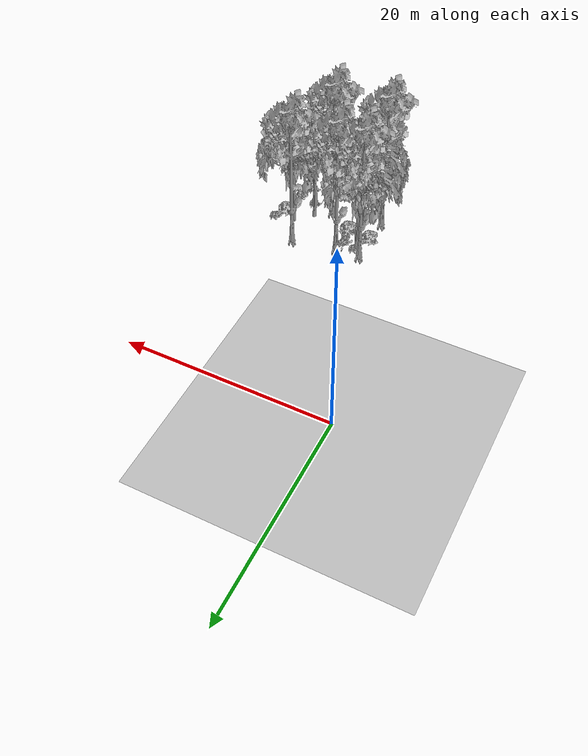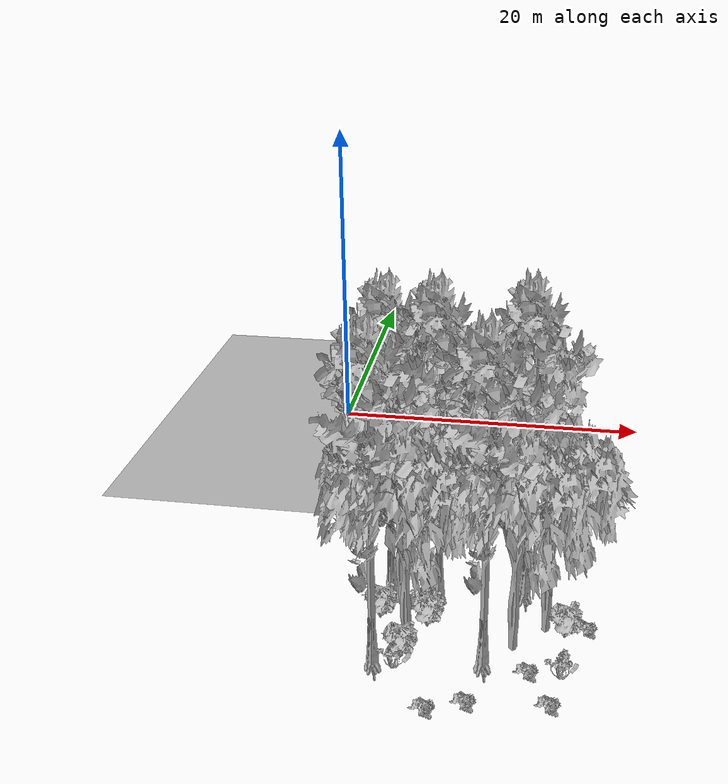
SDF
<sdf version="1.7">
 <world name="default">
  <model name="ground_plane">
   <static>1</static>
   <link name="link">
    <collision name="collision">
     <pose>-50 0 0 0 -0 0</pose>
     <geometry><plane><normal>0 0 1</normal><size>80 80</size></plane></geometry>
     <surface><contact><ode><min_depth>0.01</min_depth><max_vel>0</max_vel></ode></contact></surface>
    </collision>
    <visual name="grass">
     <cast_shadows>0</cast_shadows>
     <geometry>
      <mesh>
       <scale>0.46714285714285714 0.46714285714285714 0.1</scale>
       <uri>file://grass_plane/meshes/grass_plane.dae</uri>
      </mesh>
     </geometry>
    </visual>
   </link>
  </model>
  <model name="Tree 68">
   <static>1</static>
   <pose>11.339195001185281 -23.77236714566612 0 1.57079 -0 0</pose>
   <link name="link">
    <collision name="collision">
     <geometry><mesh><scale>3.5 5 3.5</scale><uri>model://tree_9/meshes/tree_9.obj</uri></mesh></geometry>
    </collision>
    <visual name="visual">
     <geometry><mesh><scale>3.5 5 3.5</scale><uri>model://tree_9/meshes/tree_9.obj</uri></mesh></geometry>
    </visual>
   </link>
  </model>
  <model name="Tree 129">
   <static>1</static>
   <pose>14.125215830352772 -21.000526597119897 0 1.57079 -0 0</pose>
   <link name="link">
    <collision name="collision">
     <geometry><mesh><scale>3.5 5 3.5</scale><uri>model://tree_2/meshes/tree_2.obj</uri></mesh></geometry>
    </collision>
    <visual name="visual">
     <geometry><mesh><scale>3.5 5 3.5</scale><uri>model://tree_2/meshes/tree_2.obj</uri></mesh></geometry>
    </visual>
   </link>
  </model>
  <model name="Tree 200">
   <static>1</static>
   <pose>6.86100172742146 -20.00597521660076 0 1.57079 -0 0</pose>
   <link name="link">
    <collision name="collision">
     <geometry><mesh><scale>3.5 5 3.5</scale><uri>model://tree_2/meshes/tree_2.obj</uri></mesh></geometry>
    </collision>
    <visual name="visual">
     <geometry><mesh><scale>3.5 5 3.5</scale><uri>model://tree_2/meshes/tree_2.obj</uri></mesh></geometry>
    </visual>
   </link>
  </model>
  <model name="Tree 432">
   <static>1</static>
   <pose>6.274757917883562 -19.15958313362884 0 1.57079 -0 0</pose>
   <link name="link">
    <collision name="collision">
     <geometry><mesh><scale>3.5 5 3.5</scale><uri>model://tree_9/meshes/tree_9.obj</uri></mesh></geometry>
    </collision>
    <visual name="visual">
     <geometry><mesh><scale>3.5 5 3.5</scale><uri>model://tree_9/meshes/tree_9.obj</uri></mesh></geometry>
    </visual>
   </link>
  </model>
  <model name="Tree 435">
   <static>1</static>
   <pose>12.599509060064022 -22.526927243239598 0 1.57079 -0 0</pose>
   <link name="link">
    <collision name="collision">
     <geometry><mesh><scale>3.5 5 3.5</scale><uri>model://tree_2/meshes/tree_2.obj</uri></mesh></geometry>
    </collision>
    <visual name="visual">
     <geometry><mesh><scale>3.5 5 3.5</scale><uri>model://tree_2/meshes/tree_2.obj</uri></mesh></geometry>
    </visual>
   </link>
  </model>
  <model name="Tree 517">
   <static>1</static>
   <pose>7.554066066907367 -23.095106547403503 0 1.57079 -0 0</pose>
   <link name="link">
    <collision name="collision">
     <geometry><mesh><scale>3.5 5 3.5</scale><uri>model://tree_2/meshes/tree_2.obj</uri></mesh></geometry>
    </collision>
    <visual name="visual">
     <geometry><mesh><scale>3.5 5 3.5</scale><uri>model://tree_2/meshes/tree_2.obj</uri></mesh></geometry>
    </visual>
   </link>
  </model>
  <model name="Tree 518">
   <static>1</static>
   <pose>8.715440965858754 -19.04327010101686 0 1.57079 -0 0</pose>
   <link name="link">
    <collision name="collision">
     <geometry><mesh><scale>3.5 5 3.5</scale><uri>model://tree_9/meshes/tree_9.obj</uri></mesh></geometry>
    </collision>
    <visual name="visual">
     <geometry><mesh><scale>3.5 5 3.5</scale><uri>model://tree_9/meshes/tree_9.obj</uri></mesh></geometry>
    </visual>
   </link>
  </model>
  <model name="Tree 533">
   <static>1</static>
   <pose>13.098867965914017 -18.38598945712195 0 1.57079 -0 0</pose>
   <link name="link">
    <collision name="collision">
     <geometry><mesh><scale>3.5 5 3.5</scale><uri>model://tree_9/meshes/tree_9.obj</uri></mesh></geometry>
    </collision>
    <visual name="visual">
     <geometry><mesh><scale>3.5 5 3.5</scale><uri>model://tree_9/meshes/tree_9.obj</uri></mesh></geometry>
    </visual>
   </link>
  </model>
  <model name="Tree 585">
   <static>1</static>
   <pose>6.2201643578020125 -24.371769215752686 0 1.57079 -0 0</pose>
   <link name="link">
    <collision name="collision">
     <geometry><mesh><scale>3.5 5 3.5</scale><uri>model://tree_9/meshes/tree_9.obj</uri></mesh></geometry>
    </collision>
    <visual name="visual">
     <geometry><mesh><scale>3.5 5 3.5</scale><uri>model://tree_9/meshes/tree_9.obj</uri></mesh></geometry>
    </visual>
   </link>
  </model>
  <model name="Bush 76">
   <static>1</static>
   <pose>7.072009461599656 -19.903549897004716 0 1.57079 -0 0</pose>
   <link name="link">
    <collision name="collision">
     <geometry><mesh><scale>2 2 2</scale><uri>model://bush_2/meshes/bush_2.obj</uri></mesh></geometry>
     <surface><contact><collide_without_contact>false</collide_without_contact></contact></surface>
    </collision>
    <visual name="visual">
     <geometry><mesh><scale>2 2 2</scale><uri>model://bush_2/meshes/bush_2.obj</uri></mesh></geometry>
    </visual>
   </link>
  </model>
  <model name="Bush 129">
   <static>1</static>
   <pose>8.0674106808629 -19.04170683065899 0 1.57079 -0 0</pose>
   <link name="link">
    <collision name="collision">
     <geometry><mesh><scale>2 2 2</scale><uri>model://bush_5/meshes/bush_5.obj</uri></mesh></geometry>
     <surface><contact><collide_without_contact>false</collide_without_contact></contact></surface>
    </collision>
    <visual name="visual">
     <geometry><mesh><scale>2 2 2</scale><uri>model://bush_5/meshes/bush_5.obj</uri></mesh></geometry>
    </visual>
   </link>
  </model>
  <model name="Bush 140">
   <static>1</static>
   <pose>8.14055713601909 -20.109406971659496 0 1.57079 -0 0</pose>
   <link name="link">
    <collision name="collision">
     <geometry><mesh><scale>2 2 2</scale><uri>model://bush_4/meshes/bush_4.obj</uri></mesh></geometry>
     <surface><contact><collide_without_contact>false</collide_without_contact></contact></surface>
    </collision>
    <visual name="visual">
     <geometry><mesh><scale>2 2 2</scale><uri>model://bush_4/meshes/bush_4.obj</uri></mesh></geometry>
    </visual>
   </link>
  </model>
  <model name="Bush 161">
   <static>1</static>
   <pose>15.14729992277045 -21.43636772066925 0 1.57079 -0 0</pose>
   <link name="link">
    <collision name="collision">
     <geometry><mesh><scale>2 2 2</scale><uri>model://bush_1/meshes/bush_1.obj</uri></mesh></geometry>
     <surface><contact><collide_without_contact>false</collide_without_contact></contact></surface>
    </collision>
    <visual name="visual">
     <geometry><mesh><scale>2 2 2</scale><uri>model://bush_1/meshes/bush_1.obj</uri></mesh></geometry>
    </visual>
   </link>
  </model>
  <model name="Bush 169">
   <static>1</static>
   <pose>6.031274650350596 -21.221891697357602 0 1.57079 -0 0</pose>
   <link name="link">
    <collision name="collision">
     <geometry><mesh><scale>2 2 2</scale><uri>model://bush_1/meshes/bush_1.obj</uri></mesh></geometry>
     <surface><contact><collide_without_contact>false</collide_without_contact></contact></surface>
    </collision>
    <visual name="visual">
     <geometry><mesh><scale>2 2 2</scale><uri>model://bush_1/meshes/bush_1.obj</uri></mesh></geometry>
    </visual>
   </link>
  </model>
  <model name="Bush 219">
   <static>1</static>
   <pose>10.704777529103637 -26.429839361374434 0 1.57079 -0 0</pose>
   <link name="link">
    <collision name="collision">
     <geometry><mesh><scale>2 2 2</scale><uri>model://bush_2/meshes/bush_2.obj</uri></mesh></geometry>
     <surface><contact><collide_without_contact>false</collide_without_contact></contact></surface>
    </collision>
    <visual name="visual">
     <geometry><mesh><scale>2 2 2</scale><uri>model://bush_2/meshes/bush_2.obj</uri></mesh></geometry>
    </visual>
   </link>
  </model>
  <model name="Bush 312">
   <static>1</static>
   <pose>7.2346977460605615 -24.626808684807095 0 1.57079 -0 0</pose>
   <link name="link">
    <collision name="collision">
     <geometry><mesh><scale>2 2 2</scale><uri>model://bush_4/meshes/bush_4.obj</uri></mesh></geometry>
     <surface><contact><collide_without_contact>false</collide_without_contact></contact></surface>
    </collision>
    <visual name="visual">
     <geometry><mesh><scale>2 2 2</scale><uri>model://bush_4/meshes/bush_4.obj</uri></mesh></geometry>
    </visual>
   </link>
  </model>
  <model name="Bush 367">
   <static>1</static>
   <pose>14.431050979920634 -26.117790221529944 0 1.57079 -0 0</pose>
   <link name="link">
    <collision name="collision">
     <geometry><mesh><scale>2 2 2</scale><uri>model://bush_2/meshes/bush_2.obj</uri></mesh></geometry>
     <surface><contact><collide_without_contact>false</collide_without_contact></contact></surface>
    </collision>
    <visual name="visual">
     <geometry><mesh><scale>2 2 2</scale><uri>model://bush_2/meshes/bush_2.obj</uri></mesh></geometry>
    </visual>
   </link>
  </model>
  <model name="Bush 439">
   <static>1</static>
   <pose>16.19251668974718 -20.808854797362997 0 1.57079 -0 0</pose>
   <link name="link">
    <collision name="collision">
     <geometry><mesh><scale>2 2 2</scale><uri>model://bush_2/meshes/bush_2.obj</uri></mesh></geometry>
     <surface><contact><collide_without_contact>false</collide_without_contact></contact></surface>
    </collision>
    <visual name="visual">
     <geometry><mesh><scale>2 2 2</scale><uri>model://bush_2/meshes/bush_2.obj</uri></mesh></geometry>
    </visual>
   </link>
  </model>
  <model name="Bush 443">
   <static>1</static>
   <pose>8.940242842079037 -27.03844901509501 0 1.57079 -0 0</pose>
   <link name="link">
    <collision name="collision">
     <geometry><mesh><scale>2 2 2</scale><uri>model://bush_2/meshes/bush_2.obj</uri></mesh></geometry>
     <surface><contact><collide_without_contact>false</collide_without_contact></contact></surface>
    </collision>
    <visual name="visual">
     <geometry><mesh><scale>2 2 2</scale><uri>model://bush_2/meshes/bush_2.obj</uri></mesh></geometry>
    </visual>
   </link>
  </model>
  <model name="Bush 476">
   <static>1</static>
   <pose>13.403439470723363 -24.163704501230203 0 1.57079 -0 0</pose>
   <link name="link">
    <collision name="collision">
     <geometry><mesh><scale>2 2 2</scale><uri>model://bush_2/meshes/bush_2.obj</uri></mesh></geometry>
     <surface><contact><collide_without_contact>false</collide_without_contact></contact></surface>
    </collision>
    <visual name="visual">
     <geometry><mesh><scale>2 2 2</scale><uri>model://bush_2/meshes/bush_2.obj</uri></mesh></geometry>
    </visual>
   </link>
  </model>
  <model name="Bush 530">
   <static>1</static>
   <pose>8.42970900481432 -21.55840317867075 0 1.57079 -0 0</pose>
   <link name="link">
    <collision name="collision">
     <geometry><mesh><scale>2 2 2</scale><uri>model://bush_1/meshes/bush_1.obj</uri></mesh></geometry>
     <surface><contact><collide_without_contact>false</collide_without_contact></contact></surface>
    </collision>
    <visual name="visual">
     <geometry><mesh><scale>2 2 2</scale><uri>model://bush_1/meshes/bush_1.obj</uri></mesh></geometry>
    </visual>
   </link>
  </model>
  <model name="Bush 565">
   <static>1</static>
   <pose>14.97314290299527 -24.239961580643204 0 1.57079 -0 0</pose>
   <link name="link">
    <collision name="collision">
     <geometry><mesh><scale>2 2 2</scale><uri>model://bush_4/meshes/bush_4.obj</uri></mesh></geometry>
     <surface><contact><collide_without_contact>false</collide_without_contact></contact></surface>
    </collision>
    <visual name="visual">
     <geometry><mesh><scale>2 2 2</scale><uri>model://bush_4/meshes/bush_4.obj</uri></mesh></geometry>
    </visual>
   </link>
  </model>
  <model name="Bush 592">
   <static>1</static>
   <pose>7.4303233280492975 -23.92806899732986 0 1.57079 -0 0</pose>
   <link name="link">
    <collision name="collision">
     <geometry><mesh><scale>2 2 2</scale><uri>model://bush_1/meshes/bush_1.obj</uri></mesh></geometry>
     <surface><contact><collide_without_contact>false</collide_without_contact></contact></surface>
    </collision>
    <visual name="visual">
     <geometry><mesh><scale>2 2 2</scale><uri>model://bush_1/meshes/bush_1.obj</uri></mesh></geometry>
    </visual>
   </link>
  </model>
 </world>
</sdf>
